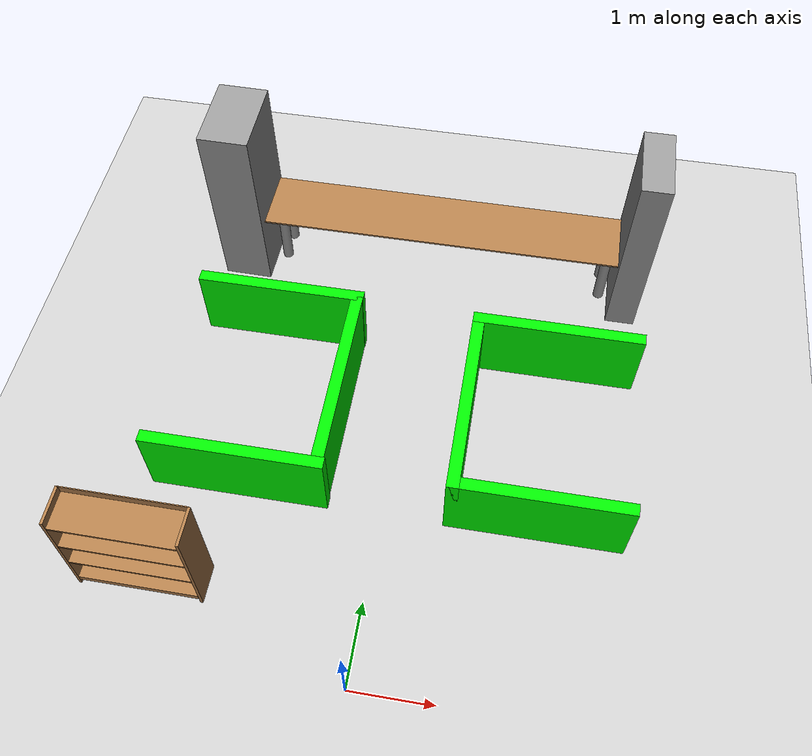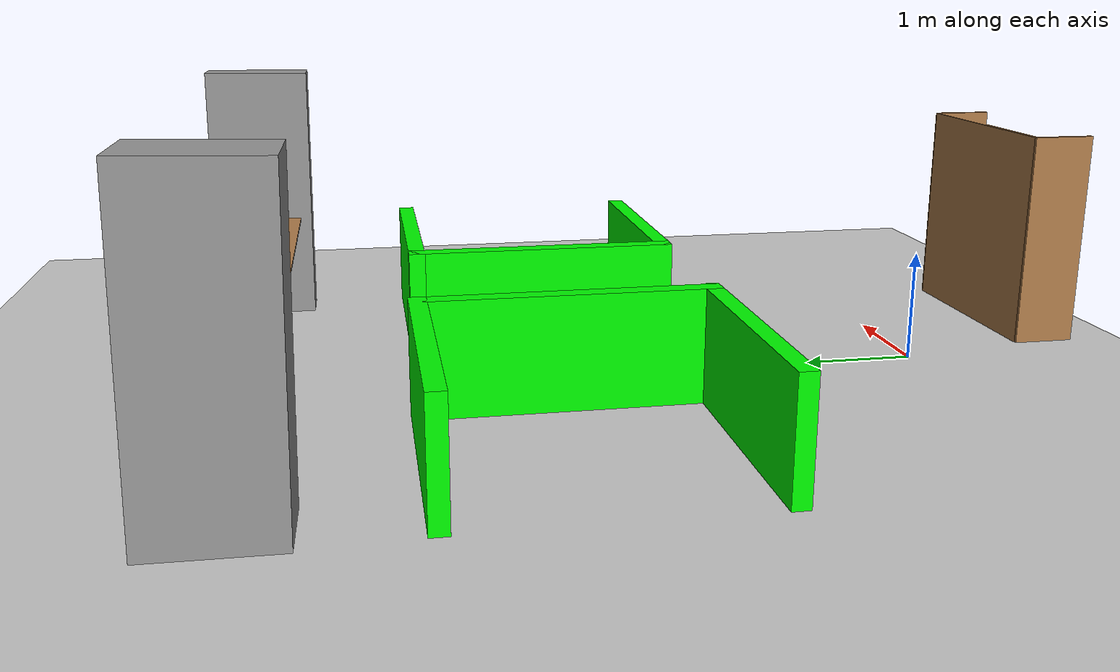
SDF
<sdf version="1.7">
 <world name="default">
  <model name="ground_plane">
   <static>1</static>
   <link name="link">
    <collision name="collision">
     <geometry><plane><normal>0 0 1</normal><size>100 100</size></plane></geometry>
     <surface>
      <contact><collide_bitmask>65535</collide_bitmask></contact>
      <friction><ode><mu>100</mu><mu2>50</mu2></ode></friction>
     </surface>
    </collision>
    <visual name="visual">
     <cast_shadows>0</cast_shadows>
     <geometry><plane><normal>0 0 1</normal><size>100 100</size></plane></geometry>
     <material>
      <script><uri>file://media/materials/scripts/gazebo.material</uri><name>Gazebo/Grey</name></script>
     </material>
    </visual>
   </link>
  </model>
  <model name="bookshelf">
   <link name="link">
    <inertial>
     <mass>1.65901</mass>
     <inertia>
      <ixx>0.0221916</ixx>
      <ixy>0</ixy>
      <ixz>0</ixz>
      <iyy>0.221936</iyy>
      <iyz>0</iyz>
      <izz>0.243984</izz>
     </inertia>
    </inertial>
    <pose>1.00602 -2.85901 1.20565 0 -0 0</pose>
    <visual name="visual6">
     <pose>0 -0.195 0.43 0 -0 0</pose>
     <geometry><box><size>1.2668 0.4 0.022734</size></box></geometry>
     <material>
      <script><uri>file://media/materials/scripts/gazebo.material</uri><name>Gazebo/Wood</name></script>
      <shader type="pixel"><normal_map>__default__</normal_map></shader>
      <ambient>1 1 1 1</ambient>
      <diffuse>1 1 1 1</diffuse>
      <specular>0.2 0.2 0.2 1</specular>
      <emissive>0 0 0 1</emissive>
     </material>
    </visual>
    <visual name="visual4">
     <pose>0 -0.195 0.03 0 -0 0</pose>
     <geometry><box><size>1.2668 0.4 0.06864</size></box></geometry>
     <material>
      <script><uri>file://media/materials/scripts/gazebo.material</uri><name>Gazebo/Wood</name></script>
      <shader type="pixel"><normal_map>__default__</normal_map></shader>
      <ambient>1 1 1 1</ambient>
      <diffuse>1 1 1 1</diffuse>
      <specular>0.2 0.2 0.2 1</specular>
      <emissive>0 0 0 1</emissive>
     </material>
    </visual>
    <visual name="visual2">
     <pose>0.65 -0.195 0.6 0 -0 0</pose>
     <geometry><box><size>0.029502 0.4 1.38625</size></box></geometry>
     <material>
      <script><uri>file://media/materials/scripts/gazebo.material</uri><name>Gazebo/Wood</name></script>
      <shader type="pixel"><normal_map>__default__</normal_map></shader>
      <ambient>1 1 1 1</ambient>
      <diffuse>1 1 1 1</diffuse>
      <specular>0.2 0.2 0.2 1</specular>
      <emissive>0 0 0 1</emissive>
     </material>
    </visual>
    <visual name="visual1">
     <pose>0 0.005 0.6 0 -0 0</pose>
     <geometry><box><size>1.29559 0.01 1.38625</size></box></geometry>
     <material>
      <script><uri>file://media/materials/scripts/gazebo.material</uri><name>Gazebo/Wood</name></script>
      <shader type="pixel"><normal_map>__default__</normal_map></shader>
      <ambient>1 1 1 1</ambient>
      <diffuse>1 1 1 1</diffuse>
      <specular>0.2 0.2 0.2 1</specular>
      <emissive>0 0 0 1</emissive>
     </material>
    </visual>
    <visual name="visual5">
     <pose>0 -0.195 1.19 0 -0 0</pose>
     <geometry><box><size>1.2668 0.4 0.022734</size></box></geometry>
     <material>
      <script><uri>file://media/materials/scripts/gazebo.material</uri><name>Gazebo/Wood</name></script>
      <shader type="pixel"><normal_map>__default__</normal_map></shader>
      <ambient>1 1 1 1</ambient>
      <diffuse>1 1 1 1</diffuse>
      <specular>0.2 0.2 0.2 1</specular>
      <emissive>0 0 0 1</emissive>
     </material>
    </visual>
    <visual name="visual7">
     <pose>0 -0.195 0.8 0 -0 0</pose>
     <geometry><box><size>1.2668 0.4 0.022734</size></box></geometry>
     <material>
      <script><uri>file://media/materials/scripts/gazebo.material</uri><name>Gazebo/Wood</name></script>
      <shader type="pixel"><normal_map>__default__</normal_map></shader>
      <ambient>1 1 1 1</ambient>
      <diffuse>1 1 1 1</diffuse>
      <specular>0.2 0.2 0.2 1</specular>
      <emissive>0 0 0 1</emissive>
     </material>
    </visual>
    <visual name="visual3">
     <pose>-0.65 -0.195 0.6 0 -0 0</pose>
     <geometry><box><size>0.029502 0.4 1.38625</size></box></geometry>
     <material>
      <script><uri>file://media/materials/scripts/gazebo.material</uri><name>Gazebo/Wood</name></script>
      <shader type="pixel"><normal_map>__default__</normal_map></shader>
      <ambient>1 1 1 1</ambient>
      <diffuse>1 1 1 1</diffuse>
      <specular>0.2 0.2 0.2 1</specular>
      <emissive>0 0 0 1</emissive>
     </material>
    </visual>
    <collision name="back">
     <pose>0 0.005 0.6 0 -0 0</pose>
     <geometry><box><size>1.29559 0.01 1.38625</size></box></geometry>
     <surface>
      <friction>
       <ode><mu>1</mu><mu2>1</mu2><fdir1>0 0 0</fdir1><slip1>0</slip1><slip2>0</slip2></ode>
       <torsional>
        <coefficient>1</coefficient>
        <patch_radius>0</patch_radius>
        <surface_radius>0</surface_radius>
        <use_patch_radius>1</use_patch_radius>
        <ode><slip>0</slip></ode>
       </torsional>
      </friction>
      <bounce><restitution_coefficient>0</restitution_coefficient><threshold>1e+06</threshold></bounce>
      <contact>
       <collide_without_contact>0</collide_without_contact>
       <collide_without_contact_bitmask>1</collide_without_contact_bitmask>
       <collide_bitmask>1</collide_bitmask>
       <ode>
        <soft_cfm>0</soft_cfm>
        <soft_erp>0.2</soft_erp>
        <kp>1e+13</kp>
        <kd>1</kd>
        <max_vel>0.01</max_vel>
        <min_depth>0</min_depth>
       </ode>
       <bullet>
        <split_impulse>1</split_impulse>
        <split_impulse_penetration_threshold>-0.01</split_impulse_penetration_threshold>
        <soft_cfm>0</soft_cfm>
        <soft_erp>0.2</soft_erp>
        <kp>1e+13</kp>
        <kd>1</kd>
       </bullet>
      </contact>
     </surface>
    </collision>
    <collision name="left_side">
     <pose>0.45 -0.195 0.6 0 -0 0</pose>
     <geometry><box><size>0.029502 0.4 1.38625</size></box></geometry>
     <surface>
      <friction>
       <ode><mu>1</mu><mu2>1</mu2><fdir1>0 0 0</fdir1><slip1>0</slip1><slip2>0</slip2></ode>
       <torsional>
        <coefficient>1</coefficient>
        <patch_radius>0</patch_radius>
        <surface_radius>0</surface_radius>
        <use_patch_radius>1</use_patch_radius>
        <ode><slip>0</slip></ode>
       </torsional>
      </friction>
      <bounce><restitution_coefficient>0</restitution_coefficient><threshold>1e+06</threshold></bounce>
      <contact>
       <collide_without_contact>0</collide_without_contact>
       <collide_without_contact_bitmask>1</collide_without_contact_bitmask>
       <collide_bitmask>1</collide_bitmask>
       <ode>
        <soft_cfm>0</soft_cfm>
        <soft_erp>0.2</soft_erp>
        <kp>1e+13</kp>
        <kd>1</kd>
        <max_vel>0.01</max_vel>
        <min_depth>0</min_depth>
       </ode>
       <bullet>
        <split_impulse>1</split_impulse>
        <split_impulse_penetration_threshold>-0.01</split_impulse_penetration_threshold>
        <soft_cfm>0</soft_cfm>
        <soft_erp>0.2</soft_erp>
        <kp>1e+13</kp>
        <kd>1</kd>
       </bullet>
      </contact>
     </surface>
    </collision>
    <collision name="bottom">
     <pose>0 -0.195 0.03 0 -0 0</pose>
     <geometry><box><size>1.2668 0.4 0.06864</size></box></geometry>
     <surface>
      <friction>
       <ode><mu>1</mu><mu2>1</mu2><fdir1>0 0 0</fdir1><slip1>0</slip1><slip2>0</slip2></ode>
       <torsional>
        <coefficient>1</coefficient>
        <patch_radius>0</patch_radius>
        <surface_radius>0</surface_radius>
        <use_patch_radius>1</use_patch_radius>
        <ode><slip>0</slip></ode>
       </torsional>
      </friction>
      <bounce><restitution_coefficient>0</restitution_coefficient><threshold>1e+06</threshold></bounce>
      <contact>
       <collide_without_contact>0</collide_without_contact>
       <collide_without_contact_bitmask>1</collide_without_contact_bitmask>
       <collide_bitmask>1</collide_bitmask>
       <ode>
        <soft_cfm>0</soft_cfm>
        <soft_erp>0.2</soft_erp>
        <kp>1e+13</kp>
        <kd>1</kd>
        <max_vel>0.01</max_vel>
        <min_depth>0</min_depth>
       </ode>
       <bullet>
        <split_impulse>1</split_impulse>
        <split_impulse_penetration_threshold>-0.01</split_impulse_penetration_threshold>
        <soft_cfm>0</soft_cfm>
        <soft_erp>0.2</soft_erp>
        <kp>1e+13</kp>
        <kd>1</kd>
       </bullet>
      </contact>
     </surface>
    </collision>
    <collision name="right_side">
     <pose>-0.45 -0.195 0.6 0 -0 0</pose>
     <geometry><box><size>0.029502 0.4 1.38625</size></box></geometry>
     <surface>
      <friction>
       <ode><mu>1</mu><mu2>1</mu2><fdir1>0 0 0</fdir1><slip1>0</slip1><slip2>0</slip2></ode>
       <torsional>
        <coefficient>1</coefficient>
        <patch_radius>0</patch_radius>
        <surface_radius>0</surface_radius>
        <use_patch_radius>1</use_patch_radius>
        <ode><slip>0</slip></ode>
       </torsional>
      </friction>
      <bounce><restitution_coefficient>0</restitution_coefficient><threshold>1e+06</threshold></bounce>
      <contact>
       <collide_without_contact>0</collide_without_contact>
       <collide_without_contact_bitmask>1</collide_without_contact_bitmask>
       <collide_bitmask>1</collide_bitmask>
       <ode>
        <soft_cfm>0</soft_cfm>
        <soft_erp>0.2</soft_erp>
        <kp>1e+13</kp>
        <kd>1</kd>
        <max_vel>0.01</max_vel>
        <min_depth>0</min_depth>
       </ode>
       <bullet>
        <split_impulse>1</split_impulse>
        <split_impulse_penetration_threshold>-0.01</split_impulse_penetration_threshold>
        <soft_cfm>0</soft_cfm>
        <soft_erp>0.2</soft_erp>
        <kp>1e+13</kp>
        <kd>1</kd>
       </bullet>
      </contact>
     </surface>
    </collision>
    <collision name="top">
     <pose>0 -0.195 1.19 0 -0 0</pose>
     <geometry><box><size>1.2668 0.4 0.022734</size></box></geometry>
     <surface>
      <friction>
       <ode><mu>1</mu><mu2>1</mu2><fdir1>0 0 0</fdir1><slip1>0</slip1><slip2>0</slip2></ode>
       <torsional>
        <coefficient>1</coefficient>
        <patch_radius>0</patch_radius>
        <surface_radius>0</surface_radius>
        <use_patch_radius>1</use_patch_radius>
        <ode><slip>0</slip></ode>
       </torsional>
      </friction>
      <bounce><restitution_coefficient>0</restitution_coefficient><threshold>1e+06</threshold></bounce>
      <contact>
       <collide_without_contact>0</collide_without_contact>
       <collide_without_contact_bitmask>1</collide_without_contact_bitmask>
       <collide_bitmask>1</collide_bitmask>
       <ode>
        <soft_cfm>0</soft_cfm>
        <soft_erp>0.2</soft_erp>
        <kp>1e+13</kp>
        <kd>1</kd>
        <max_vel>0.01</max_vel>
        <min_depth>0</min_depth>
       </ode>
       <bullet>
        <split_impulse>1</split_impulse>
        <split_impulse_penetration_threshold>-0.01</split_impulse_penetration_threshold>
        <soft_cfm>0</soft_cfm>
        <soft_erp>0.2</soft_erp>
        <kp>1e+13</kp>
        <kd>1</kd>
       </bullet>
      </contact>
     </surface>
    </collision>
    <collision name="high_shelf">
     <pose>0 -0.195 0.8 0 -0 0</pose>
     <geometry><box><size>1.2668 0.4 0.022734</size></box></geometry>
     <surface>
      <friction>
       <ode><mu>1</mu><mu2>1</mu2><fdir1>0 0 0</fdir1><slip1>0</slip1><slip2>0</slip2></ode>
       <torsional>
        <coefficient>1</coefficient>
        <patch_radius>0</patch_radius>
        <surface_radius>0</surface_radius>
        <use_patch_radius>1</use_patch_radius>
        <ode><slip>0</slip></ode>
       </torsional>
      </friction>
      <bounce><restitution_coefficient>0</restitution_coefficient><threshold>1e+06</threshold></bounce>
      <contact>
       <collide_without_contact>0</collide_without_contact>
       <collide_without_contact_bitmask>1</collide_without_contact_bitmask>
       <collide_bitmask>1</collide_bitmask>
       <ode>
        <soft_cfm>0</soft_cfm>
        <soft_erp>0.2</soft_erp>
        <kp>1e+13</kp>
        <kd>1</kd>
        <max_vel>0.01</max_vel>
        <min_depth>0</min_depth>
       </ode>
       <bullet>
        <split_impulse>1</split_impulse>
        <split_impulse_penetration_threshold>-0.01</split_impulse_penetration_threshold>
        <soft_cfm>0</soft_cfm>
        <soft_erp>0.2</soft_erp>
        <kp>1e+13</kp>
        <kd>1</kd>
       </bullet>
      </contact>
     </surface>
    </collision>
    <collision name="low_shelf">
     <pose>0 -0.195 0.43 0 -0 0</pose>
     <geometry><box><size>1.2668 0.4 0.022734</size></box></geometry>
     <surface>
      <friction>
       <ode><mu>1</mu><mu2>1</mu2><fdir1>0 0 0</fdir1><slip1>0</slip1><slip2>0</slip2></ode>
       <torsional>
        <coefficient>1</coefficient>
        <patch_radius>0</patch_radius>
        <surface_radius>0</surface_radius>
        <use_patch_radius>1</use_patch_radius>
        <ode><slip>0</slip></ode>
       </torsional>
      </friction>
      <bounce><restitution_coefficient>0</restitution_coefficient><threshold>1e+06</threshold></bounce>
      <contact>
       <collide_without_contact>0</collide_without_contact>
       <collide_without_contact_bitmask>1</collide_without_contact_bitmask>
       <collide_bitmask>1</collide_bitmask>
       <ode>
        <soft_cfm>0</soft_cfm>
        <soft_erp>0.2</soft_erp>
        <kp>1e+13</kp>
        <kd>1</kd>
        <max_vel>0.01</max_vel>
        <min_depth>0</min_depth>
       </ode>
       <bullet>
        <split_impulse>1</split_impulse>
        <split_impulse_penetration_threshold>-0.01</split_impulse_penetration_threshold>
        <soft_cfm>0</soft_cfm>
        <soft_erp>0.2</soft_erp>
        <kp>1e+13</kp>
        <kd>1</kd>
       </bullet>
      </contact>
     </surface>
    </collision>
   </link>
   <static>1</static>
   <pose>-3.16974 3.57257 0 0 -0 0</pose>
  </model>
  <model name="space1">
   <pose>-1.41586 2.33273 0 0 -0 0</pose>
   <link name="Wall_0">
    <collision name="Wall_0_Collision">
     <geometry><box><size>2.15 0.15 1</size></box></geometry>
     <pose>0 0 0.5 0 -0 0</pose>
    </collision>
    <visual name="Wall_0_Visual">
     <pose>0 0 0.5 0 -0 0</pose>
     <geometry><box><size>2.15 0.15 1</size></box></geometry>
     <material>
      <script><uri>file://media/materials/scripts/gazebo.material</uri><name>Gazebo/Grey</name></script>
      <ambient>0 1 0 1</ambient>
     </material>
     <meta><layer>0</layer></meta>
    </visual>
    <pose>-0.320005 2.28621 0 0 -0 0</pose>
   </link>
   <link name="Wall_4">
    <collision name="Wall_4_Collision">
     <geometry><box><size>2.19563 0.15 1</size></box></geometry>
     <pose>0 0 0.5 0 -0 0</pose>
    </collision>
    <visual name="Wall_4_Visual">
     <pose>0 0 0.5 0 -0 0</pose>
     <geometry><box><size>2.19563 0.15 1</size></box></geometry>
     <material>
      <script><uri>file://media/materials/scripts/gazebo.material</uri><name>Gazebo/Grey</name></script>
      <ambient>0 1 0 1</ambient>
     </material>
     <meta><layer>0</layer></meta>
    </visual>
    <pose>-0.331973 -0.155252 0 0 -0 3.14159</pose>
   </link>
   <link name="Wall_6">
    <collision name="Wall_6_Collision">
     <geometry><box><size>2.5 0.15 1</size></box></geometry>
     <pose>0 0 0.5 0 -0 0</pose>
    </collision>
    <visual name="Wall_6_Visual">
     <pose>0 0 0.5 0 -0 0</pose>
     <geometry><box><size>2.5 0.15 1</size></box></geometry>
     <material>
      <script><uri>file://media/materials/scripts/gazebo.material</uri><name>Gazebo/Grey</name></script>
      <ambient>0 1 0 1</ambient>
     </material>
     <meta><layer>0</layer></meta>
    </visual>
    <pose>0.675631 1.01975 0 0 -0 1.5708</pose>
   </link>
   <static>1</static>
  </model>
  <model name="space2">
   <pose>1.46392 2.29956 0 0 -0 0</pose>
   <link name="Wall_10">
    <collision name="Wall_10_Collision">
     <geometry><box><size>2.5 0.15 1</size></box></geometry>
     <pose>0 0 0.5 0 -0 0</pose>
    </collision>
    <visual name="Wall_10_Visual">
     <pose>0 0 0.5 0 -0 0</pose>
     <geometry><box><size>2.5 0.15 1</size></box></geometry>
     <material>
      <script><uri>file://media/materials/scripts/gazebo.material</uri><name>Gazebo/Grey</name></script>
      <ambient>0 1 0 1</ambient>
     </material>
     <meta><layer>0</layer></meta>
    </visual>
    <pose>-0.633 1.063 0 0 -0 -1.5708</pose>
   </link>
   <link name="Wall_12">
    <collision name="Wall_12_Collision">
     <geometry><box><size>2.15 0.15 1</size></box></geometry>
     <pose>0 0 0.5 0 -0 0</pose>
    </collision>
    <visual name="Wall_12_Visual">
     <pose>0 0 0.5 0 -0 0</pose>
     <geometry><box><size>2.15 0.15 1</size></box></geometry>
     <material>
      <script><uri>file://media/materials/scripts/gazebo.material</uri><name>Gazebo/Grey</name></script>
      <ambient>0 1 0 1</ambient>
     </material>
     <meta><layer>0</layer></meta>
    </visual>
    <pose>0.367 -0.112 0 0 -0 0</pose>
   </link>
   <link name="Wall_8">
    <collision name="Wall_8_Collision">
     <geometry><box><size>2.15 0.15 1</size></box></geometry>
     <pose>0 0 0.5 0 -0 0</pose>
    </collision>
    <visual name="Wall_8_Visual">
     <pose>0 0 0.5 0 -0 0</pose>
     <geometry><box><size>2.15 0.15 1</size></box></geometry>
     <material>
      <script><uri>file://media/materials/scripts/gazebo.material</uri><name>Gazebo/Grey</name></script>
      <ambient>0 1 0 1</ambient>
     </material>
     <meta><layer>0</layer></meta>
    </visual>
    <pose>0.367 2.238 0 0 -0 0</pose>
   </link>
   <static>1</static>
  </model>
  <model name="unit_box_0">
   <link name="link">
    <inertial>
     <mass>1.64132</mass>
     <inertia>
      <ixx>1.04587</ixx>
      <ixy>0</ixy>
      <ixz>0</ixz>
      <iyy>0.964527</iyy>
      <iyz>0</iyz>
      <izz>0.192213</izz>
     </inertia>
    </inertial>
    <pose>-0.05747 0.263796 -0.017849 0 -0 0</pose>
    <visual name="visual">
     <geometry><box><size>0.636638 1 2.57809</size></box></geometry>
     <material>
      <script><name>Gazebo/Grey</name><uri>file://media/materials/scripts/gazebo.material</uri></script>
      <shader type="pixel"/>
     </material>
    </visual>
    <collision name="collision">
     <geometry><box><size>0.636638 1 2.57809</size></box></geometry>
     <surface>
      <friction>
       <ode><mu>1</mu><mu2>1</mu2><fdir1>0 0 0</fdir1><slip1>0</slip1><slip2>0</slip2></ode>
       <torsional>
        <coefficient>1</coefficient>
        <patch_radius>0</patch_radius>
        <surface_radius>0</surface_radius>
        <use_patch_radius>1</use_patch_radius>
        <ode><slip>0</slip></ode>
       </torsional>
      </friction>
      <bounce><restitution_coefficient>0</restitution_coefficient><threshold>1e+06</threshold></bounce>
      <contact>
       <collide_without_contact>0</collide_without_contact>
       <collide_without_contact_bitmask>1</collide_without_contact_bitmask>
       <collide_bitmask>1</collide_bitmask>
       <ode>
        <soft_cfm>0</soft_cfm>
        <soft_erp>0.2</soft_erp>
        <kp>1e+13</kp>
        <kd>1</kd>
        <max_vel>0.01</max_vel>
        <min_depth>0</min_depth>
       </ode>
       <bullet>
        <split_impulse>1</split_impulse>
        <split_impulse_penetration_threshold>-0.01</split_impulse_penetration_threshold>
        <soft_cfm>0</soft_cfm>
        <soft_erp>0.2</soft_erp>
        <kp>1e+13</kp>
        <kd>1</kd>
       </bullet>
      </contact>
     </surface>
    </collision>
   </link>
   <static>0</static>
   <pose>-2.47285 5.74765 1.25001 0.019924 -0.002649 -0.01577</pose>
  </model>
  <model name="unit_box_0_clone">
   <link name="link">
    <inertial>
     <mass>0.989344</mass>
     <inertia>
      <ixx>0.630422</ixx>
      <ixy>0</ixy>
      <ixz>0</ixz>
      <iyy>0.560118</iyy>
      <iyz>0</iyz>
      <izz>0.0945864</izz>
     </inertia>
    </inertial>
    <pose>-0.027265 0.256508 -0.017849 0 -0 0</pose>
    <visual name="visual">
     <geometry><box><size>0.383747 1 2.57809</size></box></geometry>
     <material>
      <script><name>Gazebo/Grey</name><uri>file://media/materials/scripts/gazebo.material</uri></script>
      <shader type="pixel"/>
     </material>
    </visual>
    <collision name="collision">
     <geometry><box><size>0.383747 1 2.57809</size></box></geometry>
     <surface>
      <friction>
       <ode><mu>1</mu><mu2>1</mu2><fdir1>0 0 0</fdir1><slip1>0</slip1><slip2>0</slip2></ode>
       <torsional>
        <coefficient>1</coefficient>
        <patch_radius>0</patch_radius>
        <surface_radius>0</surface_radius>
        <use_patch_radius>1</use_patch_radius>
        <ode><slip>0</slip></ode>
       </torsional>
      </friction>
      <bounce><restitution_coefficient>0</restitution_coefficient><threshold>1e+06</threshold></bounce>
      <contact>
       <collide_without_contact>0</collide_without_contact>
       <collide_without_contact_bitmask>1</collide_without_contact_bitmask>
       <collide_bitmask>1</collide_bitmask>
       <ode>
        <soft_cfm>0</soft_cfm>
        <soft_erp>0.2</soft_erp>
        <kp>1e+13</kp>
        <kd>1</kd>
        <max_vel>0.01</max_vel>
        <min_depth>0</min_depth>
       </ode>
       <bullet>
        <split_impulse>1</split_impulse>
        <split_impulse_penetration_threshold>-0.01</split_impulse_penetration_threshold>
        <soft_cfm>0</soft_cfm>
        <soft_erp>0.2</soft_erp>
        <kp>1e+13</kp>
        <kd>1</kd>
       </bullet>
      </contact>
     </surface>
    </collision>
   </link>
   <static>0</static>
   <pose>2.72806 5.785 1.24808 0.008866 -7.3e-05 -0.001573</pose>
  </model>
  <model name="table_0_1">
   <link name="link">
    <inertial>
     <inertia><ixx>0</ixx><ixy>0</ixy><ixz>0</ixz><iyy>0</iyy><iyz>0</iyz><izz>0</izz></inertia>
     <mass>0</mass>
    </inertial>
    <pose>1.54462 -0.201188 0 0 -0 0</pose>
    <visual name="front_right_leg">
     <pose>2.2 -0.18 0.5 0 -0 0</pose>
     <geometry><cylinder><radius>0.0684148</radius><length>0.752848</length></cylinder></geometry>
     <material>
      <script><uri>file://media/materials/scripts/gazebo.material</uri><name>Gazebo/Grey</name></script>
      <shader type="pixel"><normal_map>__default__</normal_map></shader>
      <ambient>0.3 0.3 0.3 1</ambient>
      <diffuse>0.7 0.7 0.7 1</diffuse>
      <specular>0.01 0.01 0.01 1</specular>
      <emissive>0 0 0 1</emissive>
     </material>
    </visual>
    <visual name="front_left_leg">
     <pose>2.2 0.18 0.5 0 -0 0</pose>
     <geometry><cylinder><radius>0.0684148</radius><length>0.752848</length></cylinder></geometry>
     <material>
      <script><uri>file://media/materials/scripts/gazebo.material</uri><name>Gazebo/Grey</name></script>
      <shader type="pixel"><normal_map>__default__</normal_map></shader>
      <ambient>0.3 0.3 0.3 1</ambient>
      <diffuse>0.7 0.7 0.7 1</diffuse>
      <specular>0.01 0.01 0.01 1</specular>
      <emissive>0 0 0 1</emissive>
     </material>
    </visual>
    <visual name="back_left_leg">
     <pose>-2.2 0.18 0.5 0 -0 0</pose>
     <geometry><cylinder><radius>0.0684148</radius><length>0.752848</length></cylinder></geometry>
     <material>
      <script><uri>file://media/materials/scripts/gazebo.material</uri><name>Gazebo/Grey</name></script>
      <shader type="pixel"><normal_map>__default__</normal_map></shader>
      <ambient>0.3 0.3 0.3 1</ambient>
      <diffuse>0.7 0.7 0.7 1</diffuse>
      <specular>0.01 0.01 0.01 1</specular>
      <emissive>0 0 0 1</emissive>
     </material>
    </visual>
    <visual name="back_right_leg">
     <pose>-2.2 -0.18 0.5 0 -0 0</pose>
     <geometry><cylinder><radius>0.0684148</radius><length>0.752848</length></cylinder></geometry>
     <material>
      <script><uri>file://media/materials/scripts/gazebo.material</uri><name>Gazebo/Grey</name></script>
      <shader type="pixel"><normal_map>__default__</normal_map></shader>
      <ambient>0.3 0.3 0.3 1</ambient>
      <diffuse>0.7 0.7 0.7 1</diffuse>
      <specular>0.01 0.01 0.01 1</specular>
      <emissive>0 0 0 1</emissive>
     </material>
    </visual>
    <visual name="visual1">
     <pose>0 0 1 0 -0 0</pose>
     <geometry><box><size>4.86588 0.83708 0.023062</size></box></geometry>
     <material>
      <script><uri>file://media/materials/scripts/gazebo.material</uri><name>Gazebo/Wood</name></script>
      <shader type="pixel"><normal_map>__default__</normal_map></shader>
      <ambient>1 1 1 1</ambient>
      <diffuse>1 1 1 1</diffuse>
      <specular>0.2 0.2 0.2 1</specular>
      <emissive>0 0 0 1</emissive>
     </material>
    </visual>
    <collision name="front_right_leg">
     <pose>0.68 -0.38 0.5 0 -0 0</pose>
     <geometry><cylinder><radius>0.068415</radius><length>0.752848</length></cylinder></geometry>
     <surface>
      <friction>
       <ode><mu>1</mu><mu2>1</mu2><fdir1>0 0 0</fdir1><slip1>0</slip1><slip2>0</slip2></ode>
       <torsional>
        <coefficient>1</coefficient>
        <patch_radius>0</patch_radius>
        <surface_radius>0</surface_radius>
        <use_patch_radius>1</use_patch_radius>
        <ode><slip>0</slip></ode>
       </torsional>
      </friction>
      <bounce><restitution_coefficient>0</restitution_coefficient><threshold>1e+06</threshold></bounce>
      <contact>
       <collide_without_contact>0</collide_without_contact>
       <collide_without_contact_bitmask>1</collide_without_contact_bitmask>
       <collide_bitmask>1</collide_bitmask>
       <ode>
        <soft_cfm>0</soft_cfm>
        <soft_erp>0.2</soft_erp>
        <kp>1e+13</kp>
        <kd>1</kd>
        <max_vel>0.01</max_vel>
        <min_depth>0</min_depth>
       </ode>
       <bullet>
        <split_impulse>1</split_impulse>
        <split_impulse_penetration_threshold>-0.01</split_impulse_penetration_threshold>
        <soft_cfm>0</soft_cfm>
        <soft_erp>0.2</soft_erp>
        <kp>1e+13</kp>
        <kd>1</kd>
       </bullet>
      </contact>
     </surface>
    </collision>
    <collision name="surface">
     <pose>0 0 1 0 -0 0</pose>
     <geometry><box><size>4.86588 0.83708 0.023062</size></box></geometry>
     <surface>
      <friction>
       <ode><mu>0.6</mu><mu2>0.6</mu2><fdir1>0 0 0</fdir1><slip1>0</slip1><slip2>0</slip2></ode>
       <torsional>
        <coefficient>1</coefficient>
        <patch_radius>0</patch_radius>
        <surface_radius>0</surface_radius>
        <use_patch_radius>1</use_patch_radius>
        <ode><slip>0</slip></ode>
       </torsional>
      </friction>
      <bounce><restitution_coefficient>0</restitution_coefficient><threshold>1e+06</threshold></bounce>
      <contact>
       <collide_without_contact>0</collide_without_contact>
       <collide_without_contact_bitmask>1</collide_without_contact_bitmask>
       <collide_bitmask>1</collide_bitmask>
       <ode>
        <soft_cfm>0</soft_cfm>
        <soft_erp>0.2</soft_erp>
        <kp>1e+13</kp>
        <kd>1</kd>
        <max_vel>0.01</max_vel>
        <min_depth>0</min_depth>
       </ode>
       <bullet>
        <split_impulse>1</split_impulse>
        <split_impulse_penetration_threshold>-0.01</split_impulse_penetration_threshold>
        <soft_cfm>0</soft_cfm>
        <soft_erp>0.2</soft_erp>
        <kp>1e+13</kp>
        <kd>1</kd>
       </bullet>
      </contact>
     </surface>
    </collision>
    <collision name="back_right_leg">
     <pose>-0.68 -0.38 0.5 0 -0 0</pose>
     <geometry><cylinder><radius>0.068415</radius><length>0.752848</length></cylinder></geometry>
     <surface>
      <friction>
       <ode><mu>1</mu><mu2>1</mu2><fdir1>0 0 0</fdir1><slip1>0</slip1><slip2>0</slip2></ode>
       <torsional>
        <coefficient>1</coefficient>
        <patch_radius>0</patch_radius>
        <surface_radius>0</surface_radius>
        <use_patch_radius>1</use_patch_radius>
        <ode><slip>0</slip></ode>
       </torsional>
      </friction>
      <bounce><restitution_coefficient>0</restitution_coefficient><threshold>1e+06</threshold></bounce>
      <contact>
       <collide_without_contact>0</collide_without_contact>
       <collide_without_contact_bitmask>1</collide_without_contact_bitmask>
       <collide_bitmask>1</collide_bitmask>
       <ode>
        <soft_cfm>0</soft_cfm>
        <soft_erp>0.2</soft_erp>
        <kp>1e+13</kp>
        <kd>1</kd>
        <max_vel>0.01</max_vel>
        <min_depth>0</min_depth>
       </ode>
       <bullet>
        <split_impulse>1</split_impulse>
        <split_impulse_penetration_threshold>-0.01</split_impulse_penetration_threshold>
        <soft_cfm>0</soft_cfm>
        <soft_erp>0.2</soft_erp>
        <kp>1e+13</kp>
        <kd>1</kd>
       </bullet>
      </contact>
     </surface>
    </collision>
    <collision name="back_left_leg">
     <pose>-0.68 0.38 0.5 0 -0 0</pose>
     <geometry><cylinder><radius>0.068415</radius><length>0.752848</length></cylinder></geometry>
     <surface>
      <friction>
       <ode><mu>1</mu><mu2>1</mu2><fdir1>0 0 0</fdir1><slip1>0</slip1><slip2>0</slip2></ode>
       <torsional>
        <coefficient>1</coefficient>
        <patch_radius>0</patch_radius>
        <surface_radius>0</surface_radius>
        <use_patch_radius>1</use_patch_radius>
        <ode><slip>0</slip></ode>
       </torsional>
      </friction>
      <bounce><restitution_coefficient>0</restitution_coefficient><threshold>1e+06</threshold></bounce>
      <contact>
       <collide_without_contact>0</collide_without_contact>
       <collide_without_contact_bitmask>1</collide_without_contact_bitmask>
       <collide_bitmask>1</collide_bitmask>
       <ode>
        <soft_cfm>0</soft_cfm>
        <soft_erp>0.2</soft_erp>
        <kp>1e+13</kp>
        <kd>1</kd>
        <max_vel>0.01</max_vel>
        <min_depth>0</min_depth>
       </ode>
       <bullet>
        <split_impulse>1</split_impulse>
        <split_impulse_penetration_threshold>-0.01</split_impulse_penetration_threshold>
        <soft_cfm>0</soft_cfm>
        <soft_erp>0.2</soft_erp>
        <kp>1e+13</kp>
        <kd>1</kd>
       </bullet>
      </contact>
     </surface>
    </collision>
    <collision name="front_left_leg">
     <pose>0.68 0.38 0.5 0 -0 0</pose>
     <geometry><cylinder><radius>0.068415</radius><length>0.752848</length></cylinder></geometry>
     <surface>
      <friction>
       <ode><mu>1</mu><mu2>1</mu2><fdir1>0 0 0</fdir1><slip1>0</slip1><slip2>0</slip2></ode>
       <torsional>
        <coefficient>1</coefficient>
        <patch_radius>0</patch_radius>
        <surface_radius>0</surface_radius>
        <use_patch_radius>1</use_patch_radius>
        <ode><slip>0</slip></ode>
       </torsional>
      </friction>
      <bounce><restitution_coefficient>0</restitution_coefficient><threshold>1e+06</threshold></bounce>
      <contact>
       <collide_without_contact>0</collide_without_contact>
       <collide_without_contact_bitmask>1</collide_without_contact_bitmask>
       <collide_bitmask>1</collide_bitmask>
       <ode>
        <soft_cfm>0</soft_cfm>
        <soft_erp>0.2</soft_erp>
        <kp>1e+13</kp>
        <kd>1</kd>
        <max_vel>0.01</max_vel>
        <min_depth>0</min_depth>
       </ode>
       <bullet>
        <split_impulse>1</split_impulse>
        <split_impulse_penetration_threshold>-0.01</split_impulse_penetration_threshold>
        <soft_cfm>0</soft_cfm>
        <soft_erp>0.2</soft_erp>
        <kp>1e+13</kp>
        <kd>1</kd>
       </bullet>
      </contact>
     </surface>
    </collision>
   </link>
   <static>1</static>
   <pose>-1.37001 6.27276 0 0 -0 0</pose>
  </model>
 </world>
</sdf>
